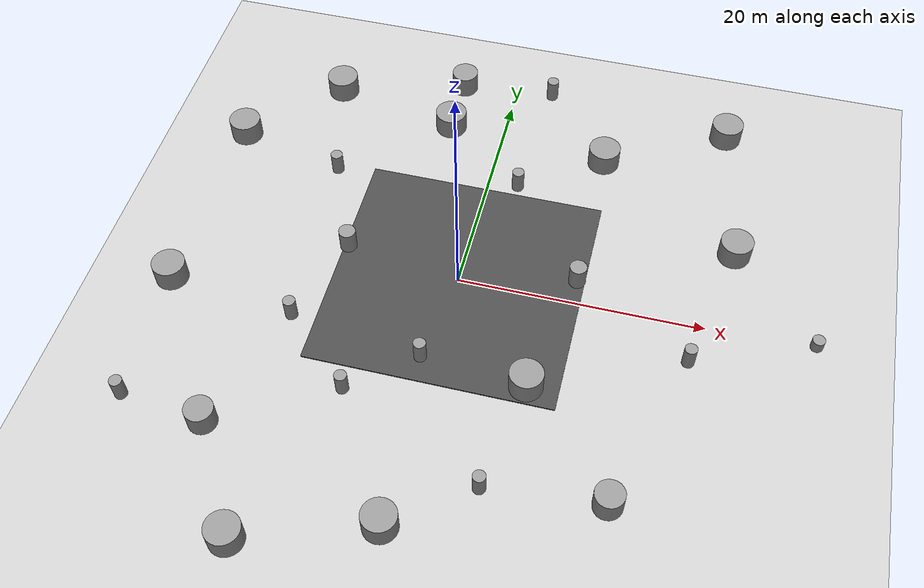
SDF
<sdf version="1.6">
 <world name="default">
  <model name="ground_plane">
   <static>1</static>
   <link name="link">
    <collision name="collision">
     <geometry><plane><normal>0 0 1</normal><size>100 100</size></plane></geometry>
     <surface><friction><ode><mu>100</mu><mu2>50</mu2></ode></friction></surface>
    </collision>
    <visual name="visual">
     <cast_shadows>0</cast_shadows>
     <geometry><plane><normal>0 0 1</normal><size>100 100</size></plane></geometry>
     <material>
      <script><uri>file://media/materials/scripts/gazebo.material</uri><name>Gazebo/Grey</name></script>
     </material>
    </visual>
   </link>
  </model>
  <model name="asphalt_plane">
   <static>1</static>
   <link name="link">
    <collision name="collision"><geometry><box><size>20 20 0.1</size></box></geometry></collision>
    <visual name="visual">
     <cast_shadows>0</cast_shadows>
     <geometry><box><size>20 20 0.1</size></box></geometry>
     <material>
      <script>
       <uri>model://asphalt_plane/materials/scripts</uri>
       <uri>model://asphalt_plane/materials/textures</uri>
       <name>vrc/asphalt</name>
      </script>
     </material>
    </visual>
   </link>
  </model>
  <model name="Landmarks">
   <link name="link_2">
    <pose>9.3573 2.17451 0 0 -0 0</pose>
    <inertial>
     <mass>3.75733</mass>
     <inertia><ixx>1.63964</ixx><ixy>0</ixy><ixz>0</ixz><iyy>1.63964</iyy><iyz>0</iyz><izz>0.906592</izz></inertia>
    </inertial>
    <visual name="visual">
     <geometry><cylinder><radius>0.694668</radius><length>1.94651</length></cylinder></geometry>
     <material>
      <lighting>1</lighting>
      <script><uri>file://media/materials/scripts/gazebo.material</uri><name>Gazebo/Grey</name></script>
      <ambient>0.3 0.3 0.3 1</ambient>
      <diffuse>0.7 0.7 0.7 1</diffuse>
      <specular>0.01 0.01 0.01 1</specular>
      <emissive>0 0 0 1</emissive>
     </material>
    </visual>
    <collision name="collision">
     <geometry><cylinder><radius>0.694668</radius><length>1.94651</length></cylinder></geometry>
     <surface>
      <friction>
       <ode><mu>1</mu><mu2>1</mu2><fdir1>0 0 0</fdir1><slip1>0</slip1><slip2>0</slip2></ode>
       <torsional>
        <coefficient>1</coefficient>
        <patch_radius>0</patch_radius>
        <surface_radius>0</surface_radius>
        <use_patch_radius>1</use_patch_radius>
        <ode><slip>0</slip></ode>
       </torsional>
      </friction>
      <bounce><restitution_coefficient>0</restitution_coefficient><threshold>1e+06</threshold></bounce>
      <contact>
       <collide_without_contact>0</collide_without_contact>
       <collide_without_contact_bitmask>1</collide_without_contact_bitmask>
       <collide_bitmask>1</collide_bitmask>
       <ode>
        <soft_cfm>0</soft_cfm>
        <soft_erp>0.2</soft_erp>
        <kp>1e+13</kp>
        <kd>1</kd>
        <max_vel>0.01</max_vel>
        <min_depth>0</min_depth>
       </ode>
       <bullet>
        <split_impulse>1</split_impulse>
        <split_impulse_penetration_threshold>-0.01</split_impulse_penetration_threshold>
        <soft_cfm>0</soft_cfm>
        <soft_erp>0.2</soft_erp>
        <kp>1e+13</kp>
        <kd>1</kd>
       </bullet>
      </contact>
     </surface>
    </collision>
   </link>
   <link name="link_2_clone">
    <pose>15.2168 -16.6499 0 0 -0 0</pose>
    <inertial>
     <mass>9.97983</mass>
     <inertia><ixx>6.34895</ixx><ixy>0</ixy><ixz>0</ixz><iyy>6.34895</iyy><iyz>0</iyz><izz>6.39585</izz></inertia>
    </inertial>
    <visual name="visual">
     <geometry><cylinder><radius>1.13215</radius><length>1.94651</length></cylinder></geometry>
     <material>
      <lighting>1</lighting>
      <script><uri>file://media/materials/scripts/gazebo.material</uri><name>Gazebo/Grey</name></script>
      <ambient>0.3 0.3 0.3 1</ambient>
      <diffuse>0.7 0.7 0.7 1</diffuse>
      <specular>0.01 0.01 0.01 1</specular>
      <emissive>0 0 0 1</emissive>
      <shader type="pixel"/>
     </material>
    </visual>
    <collision name="collision">
     <geometry><cylinder><radius>1.13215</radius><length>1.94651</length></cylinder></geometry>
     <surface>
      <friction>
       <ode><mu>1</mu><mu2>1</mu2><fdir1>0 0 0</fdir1><slip1>0</slip1><slip2>0</slip2></ode>
       <torsional>
        <coefficient>1</coefficient>
        <patch_radius>0</patch_radius>
        <surface_radius>0</surface_radius>
        <use_patch_radius>1</use_patch_radius>
        <ode><slip>0</slip></ode>
       </torsional>
      </friction>
      <bounce><restitution_coefficient>0</restitution_coefficient><threshold>1e+06</threshold></bounce>
      <contact>
       <collide_without_contact>0</collide_without_contact>
       <collide_without_contact_bitmask>1</collide_without_contact_bitmask>
       <collide_bitmask>1</collide_bitmask>
       <ode>
        <soft_cfm>0</soft_cfm>
        <soft_erp>0.2</soft_erp>
        <kp>1e+13</kp>
        <kd>1</kd>
        <max_vel>0.01</max_vel>
        <min_depth>0</min_depth>
       </ode>
       <bullet>
        <split_impulse>1</split_impulse>
        <split_impulse_penetration_threshold>-0.01</split_impulse_penetration_threshold>
        <soft_cfm>0</soft_cfm>
        <soft_erp>0.2</soft_erp>
        <kp>1e+13</kp>
        <kd>1</kd>
       </bullet>
      </contact>
     </surface>
    </collision>
   </link>
   <link name="link_2_clone_0">
    <pose>-0.966073 -7.86895 0 0 -0 0</pose>
    <inertial>
     <mass>1.94651</mass>
     <inertia>
      <ixx>0.736246</ixx>
      <ixy>0</ixy>
      <ixz>0</ixz>
      <iyy>0.736246</iyy>
      <iyz>0</iyz>
      <izz>0.243313</izz>
     </inertia>
    </inertial>
    <visual name="visual">
     <geometry><cylinder><radius>0.5</radius><length>1.94651</length></cylinder></geometry>
     <material>
      <lighting>1</lighting>
      <script><uri>file://media/materials/scripts/gazebo.material</uri><name>Gazebo/Grey</name></script>
      <ambient>0.3 0.3 0.3 1</ambient>
      <diffuse>0.7 0.7 0.7 1</diffuse>
      <specular>0.01 0.01 0.01 1</specular>
      <emissive>0 0 0 1</emissive>
      <shader type="pixel"/>
     </material>
    </visual>
    <collision name="collision">
     <geometry><cylinder><radius>0.5</radius><length>1.94651</length></cylinder></geometry>
     <surface>
      <friction>
       <ode><mu>1</mu><mu2>1</mu2><fdir1>0 0 0</fdir1><slip1>0</slip1><slip2>0</slip2></ode>
       <torsional>
        <coefficient>1</coefficient>
        <patch_radius>0</patch_radius>
        <surface_radius>0</surface_radius>
        <use_patch_radius>1</use_patch_radius>
        <ode><slip>0</slip></ode>
       </torsional>
      </friction>
      <bounce><restitution_coefficient>0</restitution_coefficient><threshold>1e+06</threshold></bounce>
      <contact>
       <collide_without_contact>0</collide_without_contact>
       <collide_without_contact_bitmask>1</collide_without_contact_bitmask>
       <collide_bitmask>1</collide_bitmask>
       <ode>
        <soft_cfm>0</soft_cfm>
        <soft_erp>0.2</soft_erp>
        <kp>1e+13</kp>
        <kd>1</kd>
        <max_vel>0.01</max_vel>
        <min_depth>0</min_depth>
       </ode>
       <bullet>
        <split_impulse>1</split_impulse>
        <split_impulse_penetration_threshold>-0.01</split_impulse_penetration_threshold>
        <soft_cfm>0</soft_cfm>
        <soft_erp>0.2</soft_erp>
        <kp>1e+13</kp>
        <kd>1</kd>
       </bullet>
      </contact>
     </surface>
    </collision>
   </link>
   <link name="link_2_clone_0_clone">
    <pose>19.0854 -3.36368 0 0 -0 0</pose>
    <inertial>
     <mass>1.94651</mass>
     <inertia>
      <ixx>0.736246</ixx>
      <ixy>0</ixy>
      <ixz>0</ixz>
      <iyy>0.736246</iyy>
      <iyz>0</iyz>
      <izz>0.243313</izz>
     </inertia>
    </inertial>
    <visual name="visual">
     <geometry><cylinder><radius>0.5</radius><length>1.94651</length></cylinder></geometry>
     <material>
      <lighting>1</lighting>
      <script><uri>file://media/materials/scripts/gazebo.material</uri><name>Gazebo/Grey</name></script>
      <ambient>0.3 0.3 0.3 1</ambient>
      <diffuse>0.7 0.7 0.7 1</diffuse>
      <specular>0.01 0.01 0.01 1</specular>
      <emissive>0 0 0 1</emissive>
      <shader type="pixel"/>
     </material>
    </visual>
    <collision name="collision">
     <geometry><cylinder><radius>0.5</radius><length>1.94651</length></cylinder></geometry>
     <surface>
      <friction>
       <ode><mu>1</mu><mu2>1</mu2><fdir1>0 0 0</fdir1><slip1>0</slip1><slip2>0</slip2></ode>
       <torsional>
        <coefficient>1</coefficient>
        <patch_radius>0</patch_radius>
        <surface_radius>0</surface_radius>
        <use_patch_radius>1</use_patch_radius>
        <ode><slip>0</slip></ode>
       </torsional>
      </friction>
      <bounce><restitution_coefficient>0</restitution_coefficient><threshold>1e+06</threshold></bounce>
      <contact>
       <collide_without_contact>0</collide_without_contact>
       <collide_without_contact_bitmask>1</collide_without_contact_bitmask>
       <collide_bitmask>1</collide_bitmask>
       <ode>
        <soft_cfm>0</soft_cfm>
        <soft_erp>0.2</soft_erp>
        <kp>1e+13</kp>
        <kd>1</kd>
        <max_vel>0.01</max_vel>
        <min_depth>0</min_depth>
       </ode>
       <bullet>
        <split_impulse>1</split_impulse>
        <split_impulse_penetration_threshold>-0.01</split_impulse_penetration_threshold>
        <soft_cfm>0</soft_cfm>
        <soft_erp>0.2</soft_erp>
        <kp>1e+13</kp>
        <kd>1</kd>
       </bullet>
      </contact>
     </surface>
    </collision>
   </link>
   <link name="link_2_clone_0_clone_0">
    <pose>-5.89095 -12.05 0 0 -0 0</pose>
    <inertial>
     <mass>1.94651</mass>
     <inertia>
      <ixx>0.736246</ixx>
      <ixy>0</ixy>
      <ixz>0</ixz>
      <iyy>0.736246</iyy>
      <iyz>0</iyz>
      <izz>0.243313</izz>
     </inertia>
    </inertial>
    <visual name="visual">
     <geometry><cylinder><radius>0.5</radius><length>1.94651</length></cylinder></geometry>
     <material>
      <lighting>1</lighting>
      <script><uri>file://media/materials/scripts/gazebo.material</uri><name>Gazebo/Grey</name></script>
      <ambient>0.3 0.3 0.3 1</ambient>
      <diffuse>0.7 0.7 0.7 1</diffuse>
      <specular>0.01 0.01 0.01 1</specular>
      <emissive>0 0 0 1</emissive>
      <shader type="pixel"/>
     </material>
    </visual>
    <collision name="collision">
     <geometry><cylinder><radius>0.5</radius><length>1.94651</length></cylinder></geometry>
     <surface>
      <friction>
       <ode><mu>1</mu><mu2>1</mu2><fdir1>0 0 0</fdir1><slip1>0</slip1><slip2>0</slip2></ode>
       <torsional>
        <coefficient>1</coefficient>
        <patch_radius>0</patch_radius>
        <surface_radius>0</surface_radius>
        <use_patch_radius>1</use_patch_radius>
        <ode><slip>0</slip></ode>
       </torsional>
      </friction>
      <bounce><restitution_coefficient>0</restitution_coefficient><threshold>1e+06</threshold></bounce>
      <contact>
       <collide_without_contact>0</collide_without_contact>
       <collide_without_contact_bitmask>1</collide_without_contact_bitmask>
       <collide_bitmask>1</collide_bitmask>
       <ode>
        <soft_cfm>0</soft_cfm>
        <soft_erp>0.2</soft_erp>
        <kp>1e+13</kp>
        <kd>1</kd>
        <max_vel>0.01</max_vel>
        <min_depth>0</min_depth>
       </ode>
       <bullet>
        <split_impulse>1</split_impulse>
        <split_impulse_penetration_threshold>-0.01</split_impulse_penetration_threshold>
        <soft_cfm>0</soft_cfm>
        <soft_erp>0.2</soft_erp>
        <kp>1e+13</kp>
        <kd>1</kd>
       </bullet>
      </contact>
     </surface>
    </collision>
   </link>
   <link name="link_2_clone_0_clone_1">
    <pose>-13.135 9.07946 0 0 -0 0</pose>
    <inertial>
     <mass>1.94651</mass>
     <inertia>
      <ixx>0.736246</ixx>
      <ixy>0</ixy>
      <ixz>0</ixz>
      <iyy>0.736246</iyy>
      <iyz>0</iyz>
      <izz>0.243313</izz>
     </inertia>
    </inertial>
    <visual name="visual">
     <geometry><cylinder><radius>0.5</radius><length>1.94651</length></cylinder></geometry>
     <material>
      <lighting>1</lighting>
      <script><uri>file://media/materials/scripts/gazebo.material</uri><name>Gazebo/Grey</name></script>
      <ambient>0.3 0.3 0.3 1</ambient>
      <diffuse>0.7 0.7 0.7 1</diffuse>
      <specular>0.01 0.01 0.01 1</specular>
      <emissive>0 0 0 1</emissive>
      <shader type="pixel"/>
     </material>
    </visual>
    <collision name="collision">
     <geometry><cylinder><radius>0.5</radius><length>1.94651</length></cylinder></geometry>
     <surface>
      <friction>
       <ode><mu>1</mu><mu2>1</mu2><fdir1>0 0 0</fdir1><slip1>0</slip1><slip2>0</slip2></ode>
       <torsional>
        <coefficient>1</coefficient>
        <patch_radius>0</patch_radius>
        <surface_radius>0</surface_radius>
        <use_patch_radius>1</use_patch_radius>
        <ode><slip>0</slip></ode>
       </torsional>
      </friction>
      <bounce><restitution_coefficient>0</restitution_coefficient><threshold>1e+06</threshold></bounce>
      <contact>
       <collide_without_contact>0</collide_without_contact>
       <collide_without_contact_bitmask>1</collide_without_contact_bitmask>
       <collide_bitmask>1</collide_bitmask>
       <ode>
        <soft_cfm>0</soft_cfm>
        <soft_erp>0.2</soft_erp>
        <kp>1e+13</kp>
        <kd>1</kd>
        <max_vel>0.01</max_vel>
        <min_depth>0</min_depth>
       </ode>
       <bullet>
        <split_impulse>1</split_impulse>
        <split_impulse_penetration_threshold>-0.01</split_impulse_penetration_threshold>
        <soft_cfm>0</soft_cfm>
        <soft_erp>0.2</soft_erp>
        <kp>1e+13</kp>
        <kd>1</kd>
       </bullet>
      </contact>
     </surface>
    </collision>
   </link>
   <link name="link_2_clone_0_clone_1_clone">
    <pose>3.10906 22.4532 0 0 -0 0</pose>
    <inertial>
     <mass>1.94651</mass>
     <inertia>
      <ixx>0.736246</ixx>
      <ixy>0</ixy>
      <ixz>0</ixz>
      <iyy>0.736246</iyy>
      <iyz>0</iyz>
      <izz>0.243313</izz>
     </inertia>
    </inertial>
    <visual name="visual">
     <geometry><cylinder><radius>0.5</radius><length>1.94651</length></cylinder></geometry>
     <material>
      <lighting>1</lighting>
      <script><uri>file://media/materials/scripts/gazebo.material</uri><name>Gazebo/Grey</name></script>
      <ambient>0.3 0.3 0.3 1</ambient>
      <diffuse>0.7 0.7 0.7 1</diffuse>
      <specular>0.01 0.01 0.01 1</specular>
      <emissive>0 0 0 1</emissive>
      <shader type="pixel"/>
     </material>
    </visual>
    <collision name="collision">
     <geometry><cylinder><radius>0.5</radius><length>1.94651</length></cylinder></geometry>
     <surface>
      <friction>
       <ode><mu>1</mu><mu2>1</mu2><fdir1>0 0 0</fdir1><slip1>0</slip1><slip2>0</slip2></ode>
       <torsional>
        <coefficient>1</coefficient>
        <patch_radius>0</patch_radius>
        <surface_radius>0</surface_radius>
        <use_patch_radius>1</use_patch_radius>
        <ode><slip>0</slip></ode>
       </torsional>
      </friction>
      <bounce><restitution_coefficient>0</restitution_coefficient><threshold>1e+06</threshold></bounce>
      <contact>
       <collide_without_contact>0</collide_without_contact>
       <collide_without_contact_bitmask>1</collide_without_contact_bitmask>
       <collide_bitmask>1</collide_bitmask>
       <ode>
        <soft_cfm>0</soft_cfm>
        <soft_erp>0.2</soft_erp>
        <kp>1e+13</kp>
        <kd>1</kd>
        <max_vel>0.01</max_vel>
        <min_depth>0</min_depth>
       </ode>
       <bullet>
        <split_impulse>1</split_impulse>
        <split_impulse_penetration_threshold>-0.01</split_impulse_penetration_threshold>
        <soft_cfm>0</soft_cfm>
        <soft_erp>0.2</soft_erp>
        <kp>1e+13</kp>
        <kd>1</kd>
       </bullet>
      </contact>
     </surface>
    </collision>
   </link>
   <link name="link_2_clone_0_clone_1_clone_0">
    <pose>-21.8909 -16.5468 0 0 -0 0</pose>
    <inertial>
     <mass>1.94651</mass>
     <inertia>
      <ixx>0.736246</ixx>
      <ixy>0</ixy>
      <ixz>0</ixz>
      <iyy>0.736246</iyy>
      <iyz>0</iyz>
      <izz>0.243313</izz>
     </inertia>
    </inertial>
    <visual name="visual">
     <geometry><cylinder><radius>0.5</radius><length>1.94651</length></cylinder></geometry>
     <material>
      <lighting>1</lighting>
      <script><uri>file://media/materials/scripts/gazebo.material</uri><name>Gazebo/Grey</name></script>
      <ambient>0.3 0.3 0.3 1</ambient>
      <diffuse>0.7 0.7 0.7 1</diffuse>
      <specular>0.01 0.01 0.01 1</specular>
      <emissive>0 0 0 1</emissive>
      <shader type="pixel"/>
     </material>
    </visual>
    <collision name="collision">
     <geometry><cylinder><radius>0.5</radius><length>1.94651</length></cylinder></geometry>
     <surface>
      <friction>
       <ode><mu>1</mu><mu2>1</mu2><fdir1>0 0 0</fdir1><slip1>0</slip1><slip2>0</slip2></ode>
       <torsional>
        <coefficient>1</coefficient>
        <patch_radius>0</patch_radius>
        <surface_radius>0</surface_radius>
        <use_patch_radius>1</use_patch_radius>
        <ode><slip>0</slip></ode>
       </torsional>
      </friction>
      <bounce><restitution_coefficient>0</restitution_coefficient><threshold>1e+06</threshold></bounce>
      <contact>
       <collide_without_contact>0</collide_without_contact>
       <collide_without_contact_bitmask>1</collide_without_contact_bitmask>
       <collide_bitmask>1</collide_bitmask>
       <ode>
        <soft_cfm>0</soft_cfm>
        <soft_erp>0.2</soft_erp>
        <kp>1e+13</kp>
        <kd>1</kd>
        <max_vel>0.01</max_vel>
        <min_depth>0</min_depth>
       </ode>
       <bullet>
        <split_impulse>1</split_impulse>
        <split_impulse_penetration_threshold>-0.01</split_impulse_penetration_threshold>
        <soft_cfm>0</soft_cfm>
        <soft_erp>0.2</soft_erp>
        <kp>1e+13</kp>
        <kd>1</kd>
       </bullet>
      </contact>
     </surface>
    </collision>
   </link>
   <link name="link_2_clone_0_clone_1_clone_1">
    <pose>6.10905 -17.5468 0 0 -0 0</pose>
    <inertial>
     <mass>1.94651</mass>
     <inertia>
      <ixx>0.736246</ixx>
      <ixy>0</ixy>
      <ixz>0</ixz>
      <iyy>0.736246</iyy>
      <iyz>0</iyz>
      <izz>0.243313</izz>
     </inertia>
    </inertial>
    <visual name="visual">
     <geometry><cylinder><radius>0.5</radius><length>1.94651</length></cylinder></geometry>
     <material>
      <lighting>1</lighting>
      <script><uri>file://media/materials/scripts/gazebo.material</uri><name>Gazebo/Grey</name></script>
      <ambient>0.3 0.3 0.3 1</ambient>
      <diffuse>0.7 0.7 0.7 1</diffuse>
      <specular>0.01 0.01 0.01 1</specular>
      <emissive>0 0 0 1</emissive>
      <shader type="pixel"/>
     </material>
    </visual>
    <collision name="collision">
     <geometry><cylinder><radius>0.5</radius><length>1.94651</length></cylinder></geometry>
     <surface>
      <friction>
       <ode><mu>1</mu><mu2>1</mu2><fdir1>0 0 0</fdir1><slip1>0</slip1><slip2>0</slip2></ode>
       <torsional>
        <coefficient>1</coefficient>
        <patch_radius>0</patch_radius>
        <surface_radius>0</surface_radius>
        <use_patch_radius>1</use_patch_radius>
        <ode><slip>0</slip></ode>
       </torsional>
      </friction>
      <bounce><restitution_coefficient>0</restitution_coefficient><threshold>1e+06</threshold></bounce>
      <contact>
       <collide_without_contact>0</collide_without_contact>
       <collide_without_contact_bitmask>1</collide_without_contact_bitmask>
       <collide_bitmask>1</collide_bitmask>
       <ode>
        <soft_cfm>0</soft_cfm>
        <soft_erp>0.2</soft_erp>
        <kp>1e+13</kp>
        <kd>1</kd>
        <max_vel>0.01</max_vel>
        <min_depth>0</min_depth>
       </ode>
       <bullet>
        <split_impulse>1</split_impulse>
        <split_impulse_penetration_threshold>-0.01</split_impulse_penetration_threshold>
        <soft_cfm>0</soft_cfm>
        <soft_erp>0.2</soft_erp>
        <kp>1e+13</kp>
        <kd>1</kd>
       </bullet>
      </contact>
     </surface>
    </collision>
   </link>
   <link name="link_2_clone_0_clone_2">
    <pose>-11.8909 -6.54677 0 0 -0 0</pose>
    <inertial>
     <mass>1.94651</mass>
     <inertia>
      <ixx>0.736246</ixx>
      <ixy>0</ixy>
      <ixz>0</ixz>
      <iyy>0.736246</iyy>
      <iyz>0</iyz>
      <izz>0.243313</izz>
     </inertia>
    </inertial>
    <visual name="visual">
     <geometry><cylinder><radius>0.5</radius><length>1.94651</length></cylinder></geometry>
     <material>
      <lighting>1</lighting>
      <script><uri>file://media/materials/scripts/gazebo.material</uri><name>Gazebo/Grey</name></script>
      <ambient>0.3 0.3 0.3 1</ambient>
      <diffuse>0.7 0.7 0.7 1</diffuse>
      <specular>0.01 0.01 0.01 1</specular>
      <emissive>0 0 0 1</emissive>
      <shader type="pixel"/>
     </material>
    </visual>
    <collision name="collision">
     <geometry><cylinder><radius>0.5</radius><length>1.94651</length></cylinder></geometry>
     <surface>
      <friction>
       <ode><mu>1</mu><mu2>1</mu2><fdir1>0 0 0</fdir1><slip1>0</slip1><slip2>0</slip2></ode>
       <torsional>
        <coefficient>1</coefficient>
        <patch_radius>0</patch_radius>
        <surface_radius>0</surface_radius>
        <use_patch_radius>1</use_patch_radius>
        <ode><slip>0</slip></ode>
       </torsional>
      </friction>
      <bounce><restitution_coefficient>0</restitution_coefficient><threshold>1e+06</threshold></bounce>
      <contact>
       <collide_without_contact>0</collide_without_contact>
       <collide_without_contact_bitmask>1</collide_without_contact_bitmask>
       <collide_bitmask>1</collide_bitmask>
       <ode>
        <soft_cfm>0</soft_cfm>
        <soft_erp>0.2</soft_erp>
        <kp>1e+13</kp>
        <kd>1</kd>
        <max_vel>0.01</max_vel>
        <min_depth>0</min_depth>
       </ode>
       <bullet>
        <split_impulse>1</split_impulse>
        <split_impulse_penetration_threshold>-0.01</split_impulse_penetration_threshold>
        <soft_cfm>0</soft_cfm>
        <soft_erp>0.2</soft_erp>
        <kp>1e+13</kp>
        <kd>1</kd>
       </bullet>
      </contact>
     </surface>
    </collision>
   </link>
   <link name="link_2_clone_0_clone_3">
    <pose>2.47459 10.8905 0 0 -0 0</pose>
    <inertial>
     <mass>1.94651</mass>
     <inertia>
      <ixx>0.736246</ixx>
      <ixy>0</ixy>
      <ixz>0</ixz>
      <iyy>0.736246</iyy>
      <iyz>0</iyz>
      <izz>0.243313</izz>
     </inertia>
    </inertial>
    <visual name="visual">
     <geometry><cylinder><radius>0.5</radius><length>1.94651</length></cylinder></geometry>
     <material>
      <lighting>1</lighting>
      <script><uri>file://media/materials/scripts/gazebo.material</uri><name>Gazebo/Grey</name></script>
      <ambient>0.3 0.3 0.3 1</ambient>
      <diffuse>0.7 0.7 0.7 1</diffuse>
      <specular>0.01 0.01 0.01 1</specular>
      <emissive>0 0 0 1</emissive>
      <shader type="pixel"/>
     </material>
    </visual>
    <collision name="collision">
     <geometry><cylinder><radius>0.5</radius><length>1.94651</length></cylinder></geometry>
     <surface>
      <friction>
       <ode><mu>1</mu><mu2>1</mu2><fdir1>0 0 0</fdir1><slip1>0</slip1><slip2>0</slip2></ode>
       <torsional>
        <coefficient>1</coefficient>
        <patch_radius>0</patch_radius>
        <surface_radius>0</surface_radius>
        <use_patch_radius>1</use_patch_radius>
        <ode><slip>0</slip></ode>
       </torsional>
      </friction>
      <bounce><restitution_coefficient>0</restitution_coefficient><threshold>1e+06</threshold></bounce>
      <contact>
       <collide_without_contact>0</collide_without_contact>
       <collide_without_contact_bitmask>1</collide_without_contact_bitmask>
       <collide_bitmask>1</collide_bitmask>
       <ode>
        <soft_cfm>0</soft_cfm>
        <soft_erp>0.2</soft_erp>
        <kp>1e+13</kp>
        <kd>1</kd>
        <max_vel>0.01</max_vel>
        <min_depth>0</min_depth>
       </ode>
       <bullet>
        <split_impulse>1</split_impulse>
        <split_impulse_penetration_threshold>-0.01</split_impulse_penetration_threshold>
        <soft_cfm>0</soft_cfm>
        <soft_erp>0.2</soft_erp>
        <kp>1e+13</kp>
        <kd>1</kd>
       </bullet>
      </contact>
     </surface>
    </collision>
   </link>
   <link name="link_2_clone_1">
    <pose>7.49676 -8.50112 0 0 -0 0</pose>
    <inertial>
     <mass>13.9411</mass>
     <inertia><ixx>10.6422</ixx><ixy>0</ixy><ixz>0</ixz><iyy>10.6422</iyy><iyz>0</iyz><izz>12.481</izz></inertia>
    </inertial>
    <visual name="visual">
     <geometry><cylinder><radius>1.33811</radius><length>1.94651</length></cylinder></geometry>
     <material>
      <lighting>1</lighting>
      <script><uri>file://media/materials/scripts/gazebo.material</uri><name>Gazebo/Grey</name></script>
      <ambient>0.3 0.3 0.3 1</ambient>
      <diffuse>0.7 0.7 0.7 1</diffuse>
      <specular>0.01 0.01 0.01 1</specular>
      <emissive>0 0 0 1</emissive>
      <shader type="pixel"/>
     </material>
    </visual>
    <collision name="collision">
     <geometry><cylinder><radius>1.33811</radius><length>1.94651</length></cylinder></geometry>
     <surface>
      <friction>
       <ode><mu>1</mu><mu2>1</mu2><fdir1>0 0 0</fdir1><slip1>0</slip1><slip2>0</slip2></ode>
       <torsional>
        <coefficient>1</coefficient>
        <patch_radius>0</patch_radius>
        <surface_radius>0</surface_radius>
        <use_patch_radius>1</use_patch_radius>
        <ode><slip>0</slip></ode>
       </torsional>
      </friction>
      <bounce><restitution_coefficient>0</restitution_coefficient><threshold>1e+06</threshold></bounce>
      <contact>
       <collide_without_contact>0</collide_without_contact>
       <collide_without_contact_bitmask>1</collide_without_contact_bitmask>
       <collide_bitmask>1</collide_bitmask>
       <ode>
        <soft_cfm>0</soft_cfm>
        <soft_erp>0.2</soft_erp>
        <kp>1e+13</kp>
        <kd>1</kd>
        <max_vel>0.01</max_vel>
        <min_depth>0</min_depth>
       </ode>
       <bullet>
        <split_impulse>1</split_impulse>
        <split_impulse_penetration_threshold>-0.01</split_impulse_penetration_threshold>
        <soft_cfm>0</soft_cfm>
        <soft_erp>0.2</soft_erp>
        <kp>1e+13</kp>
        <kd>1</kd>
       </bullet>
      </contact>
     </surface>
    </collision>
   </link>
   <link name="link_2_clone_1_clone">
    <pose>0.151473 -22.0614 0 0 -0 0</pose>
    <inertial>
     <mass>13.9411</mass>
     <inertia><ixx>10.6422</ixx><ixy>0</ixy><ixz>0</ixz><iyy>10.6422</iyy><iyz>0</iyz><izz>12.481</izz></inertia>
    </inertial>
    <visual name="visual">
     <geometry><cylinder><radius>1.33811</radius><length>1.94651</length></cylinder></geometry>
     <material>
      <lighting>1</lighting>
      <script><uri>file://media/materials/scripts/gazebo.material</uri><name>Gazebo/Grey</name></script>
      <ambient>0.3 0.3 0.3 1</ambient>
      <diffuse>0.7 0.7 0.7 1</diffuse>
      <specular>0.01 0.01 0.01 1</specular>
      <emissive>0 0 0 1</emissive>
      <shader type="pixel"/>
     </material>
    </visual>
    <collision name="collision">
     <geometry><cylinder><radius>1.33811</radius><length>1.94651</length></cylinder></geometry>
     <surface>
      <friction>
       <ode><mu>1</mu><mu2>1</mu2><fdir1>0 0 0</fdir1><slip1>0</slip1><slip2>0</slip2></ode>
       <torsional>
        <coefficient>1</coefficient>
        <patch_radius>0</patch_radius>
        <surface_radius>0</surface_radius>
        <use_patch_radius>1</use_patch_radius>
        <ode><slip>0</slip></ode>
       </torsional>
      </friction>
      <bounce><restitution_coefficient>0</restitution_coefficient><threshold>1e+06</threshold></bounce>
      <contact>
       <collide_without_contact>0</collide_without_contact>
       <collide_without_contact_bitmask>1</collide_without_contact_bitmask>
       <collide_bitmask>1</collide_bitmask>
       <ode>
        <soft_cfm>0</soft_cfm>
        <soft_erp>0.2</soft_erp>
        <kp>1e+13</kp>
        <kd>1</kd>
        <max_vel>0.01</max_vel>
        <min_depth>0</min_depth>
       </ode>
       <bullet>
        <split_impulse>1</split_impulse>
        <split_impulse_penetration_threshold>-0.01</split_impulse_penetration_threshold>
        <soft_cfm>0</soft_cfm>
        <soft_erp>0.2</soft_erp>
        <kp>1e+13</kp>
        <kd>1</kd>
       </bullet>
      </contact>
     </surface>
    </collision>
   </link>
   <link name="link_2_clone_1_clone_0">
    <pose>-22.5161 -5.35534 0 0 -0 0</pose>
    <inertial>
     <mass>13.9411</mass>
     <inertia><ixx>10.6422</ixx><ixy>0</ixy><ixz>0</ixz><iyy>10.6422</iyy><iyz>0</iyz><izz>12.481</izz></inertia>
    </inertial>
    <visual name="visual">
     <geometry><cylinder><radius>1.33811</radius><length>1.94651</length></cylinder></geometry>
     <material>
      <lighting>1</lighting>
      <script><uri>file://media/materials/scripts/gazebo.material</uri><name>Gazebo/Grey</name></script>
      <ambient>0.3 0.3 0.3 1</ambient>
      <diffuse>0.7 0.7 0.7 1</diffuse>
      <specular>0.01 0.01 0.01 1</specular>
      <emissive>0 0 0 1</emissive>
      <shader type="pixel"/>
     </material>
    </visual>
    <collision name="collision">
     <geometry><cylinder><radius>1.33811</radius><length>1.94651</length></cylinder></geometry>
     <surface>
      <friction>
       <ode><mu>1</mu><mu2>1</mu2><fdir1>0 0 0</fdir1><slip1>0</slip1><slip2>0</slip2></ode>
       <torsional>
        <coefficient>1</coefficient>
        <patch_radius>0</patch_radius>
        <surface_radius>0</surface_radius>
        <use_patch_radius>1</use_patch_radius>
        <ode><slip>0</slip></ode>
       </torsional>
      </friction>
      <bounce><restitution_coefficient>0</restitution_coefficient><threshold>1e+06</threshold></bounce>
      <contact>
       <collide_without_contact>0</collide_without_contact>
       <collide_without_contact_bitmask>1</collide_without_contact_bitmask>
       <collide_bitmask>1</collide_bitmask>
       <ode>
        <soft_cfm>0</soft_cfm>
        <soft_erp>0.2</soft_erp>
        <kp>1e+13</kp>
        <kd>1</kd>
        <max_vel>0.01</max_vel>
        <min_depth>0</min_depth>
       </ode>
       <bullet>
        <split_impulse>1</split_impulse>
        <split_impulse_penetration_threshold>-0.01</split_impulse_penetration_threshold>
        <soft_cfm>0</soft_cfm>
        <soft_erp>0.2</soft_erp>
        <kp>1e+13</kp>
        <kd>1</kd>
       </bullet>
      </contact>
     </surface>
    </collision>
   </link>
   <link name="link_2_clone_1_clone_1">
    <pose>-15.6488 18.494 0 0 -0 0</pose>
    <inertial>
     <mass>13.9411</mass>
     <inertia><ixx>10.6422</ixx><ixy>0</ixy><ixz>0</ixz><iyy>10.6422</iyy><iyz>0</iyz><izz>12.481</izz></inertia>
    </inertial>
    <visual name="visual">
     <geometry><cylinder><radius>1.33811</radius><length>1.94651</length></cylinder></geometry>
     <material>
      <lighting>1</lighting>
      <script><uri>file://media/materials/scripts/gazebo.material</uri><name>Gazebo/Grey</name></script>
      <ambient>0.3 0.3 0.3 1</ambient>
      <diffuse>0.7 0.7 0.7 1</diffuse>
      <specular>0.01 0.01 0.01 1</specular>
      <emissive>0 0 0 1</emissive>
      <shader type="pixel"/>
     </material>
    </visual>
    <collision name="collision">
     <geometry><cylinder><radius>1.33811</radius><length>1.94651</length></cylinder></geometry>
     <surface>
      <friction>
       <ode><mu>1</mu><mu2>1</mu2><fdir1>0 0 0</fdir1><slip1>0</slip1><slip2>0</slip2></ode>
       <torsional>
        <coefficient>1</coefficient>
        <patch_radius>0</patch_radius>
        <surface_radius>0</surface_radius>
        <use_patch_radius>1</use_patch_radius>
        <ode><slip>0</slip></ode>
       </torsional>
      </friction>
      <bounce><restitution_coefficient>0</restitution_coefficient><threshold>1e+06</threshold></bounce>
      <contact>
       <collide_without_contact>0</collide_without_contact>
       <collide_without_contact_bitmask>1</collide_without_contact_bitmask>
       <collide_bitmask>1</collide_bitmask>
       <ode>
        <soft_cfm>0</soft_cfm>
        <soft_erp>0.2</soft_erp>
        <kp>1e+13</kp>
        <kd>1</kd>
        <max_vel>0.01</max_vel>
        <min_depth>0</min_depth>
       </ode>
       <bullet>
        <split_impulse>1</split_impulse>
        <split_impulse_penetration_threshold>-0.01</split_impulse_penetration_threshold>
        <soft_cfm>0</soft_cfm>
        <soft_erp>0.2</soft_erp>
        <kp>1e+13</kp>
        <kd>1</kd>
       </bullet>
      </contact>
     </surface>
    </collision>
   </link>
   <link name="link_2_clone_1_clone_2">
    <pose>-4.89095 16.4532 0 0 -0 0</pose>
    <inertial>
     <mass>13.9411</mass>
     <inertia><ixx>10.6422</ixx><ixy>0</ixy><ixz>0</ixz><iyy>10.6422</iyy><iyz>0</iyz><izz>12.481</izz></inertia>
    </inertial>
    <visual name="visual">
     <geometry><cylinder><radius>1.33811</radius><length>1.94651</length></cylinder></geometry>
     <material>
      <lighting>1</lighting>
      <script><uri>file://media/materials/scripts/gazebo.material</uri><name>Gazebo/Grey</name></script>
      <ambient>0.3 0.3 0.3 1</ambient>
      <diffuse>0.7 0.7 0.7 1</diffuse>
      <specular>0.01 0.01 0.01 1</specular>
      <emissive>0 0 0 1</emissive>
      <shader type="pixel"/>
     </material>
    </visual>
    <collision name="collision">
     <geometry><cylinder><radius>1.33811</radius><length>1.94651</length></cylinder></geometry>
     <surface>
      <friction>
       <ode><mu>1</mu><mu2>1</mu2><fdir1>0 0 0</fdir1><slip1>0</slip1><slip2>0</slip2></ode>
       <torsional>
        <coefficient>1</coefficient>
        <patch_radius>0</patch_radius>
        <surface_radius>0</surface_radius>
        <use_patch_radius>1</use_patch_radius>
        <ode><slip>0</slip></ode>
       </torsional>
      </friction>
      <bounce><restitution_coefficient>0</restitution_coefficient><threshold>1e+06</threshold></bounce>
      <contact>
       <collide_without_contact>0</collide_without_contact>
       <collide_without_contact_bitmask>1</collide_without_contact_bitmask>
       <collide_bitmask>1</collide_bitmask>
       <ode>
        <soft_cfm>0</soft_cfm>
        <soft_erp>0.2</soft_erp>
        <kp>1e+13</kp>
        <kd>1</kd>
        <max_vel>0.01</max_vel>
        <min_depth>0</min_depth>
       </ode>
       <bullet>
        <split_impulse>1</split_impulse>
        <split_impulse_penetration_threshold>-0.01</split_impulse_penetration_threshold>
        <soft_cfm>0</soft_cfm>
        <soft_erp>0.2</soft_erp>
        <kp>1e+13</kp>
        <kd>1</kd>
       </bullet>
      </contact>
     </surface>
    </collision>
   </link>
   <link name="link_2_clone_1_clone_3">
    <pose>9.10905 15.4532 0 0 -0 0</pose>
    <inertial>
     <mass>13.9411</mass>
     <inertia><ixx>10.6422</ixx><ixy>0</ixy><ixz>0</ixz><iyy>10.6422</iyy><iyz>0</iyz><izz>12.481</izz></inertia>
    </inertial>
    <visual name="visual">
     <geometry><cylinder><radius>1.33811</radius><length>1.94651</length></cylinder></geometry>
     <material>
      <lighting>1</lighting>
      <script><uri>file://media/materials/scripts/gazebo.material</uri><name>Gazebo/Grey</name></script>
      <ambient>0.3 0.3 0.3 1</ambient>
      <diffuse>0.7 0.7 0.7 1</diffuse>
      <specular>0.01 0.01 0.01 1</specular>
      <emissive>0 0 0 1</emissive>
      <shader type="pixel"/>
     </material>
    </visual>
    <collision name="collision">
     <geometry><cylinder><radius>1.33811</radius><length>1.94651</length></cylinder></geometry>
     <surface>
      <friction>
       <ode><mu>1</mu><mu2>1</mu2><fdir1>0 0 0</fdir1><slip1>0</slip1><slip2>0</slip2></ode>
       <torsional>
        <coefficient>1</coefficient>
        <patch_radius>0</patch_radius>
        <surface_radius>0</surface_radius>
        <use_patch_radius>1</use_patch_radius>
        <ode><slip>0</slip></ode>
       </torsional>
      </friction>
      <bounce><restitution_coefficient>0</restitution_coefficient><threshold>1e+06</threshold></bounce>
      <contact>
       <collide_without_contact>0</collide_without_contact>
       <collide_without_contact_bitmask>1</collide_without_contact_bitmask>
       <collide_bitmask>1</collide_bitmask>
       <ode>
        <soft_cfm>0</soft_cfm>
        <soft_erp>0.2</soft_erp>
        <kp>1e+13</kp>
        <kd>1</kd>
        <max_vel>0.01</max_vel>
        <min_depth>0</min_depth>
       </ode>
       <bullet>
        <split_impulse>1</split_impulse>
        <split_impulse_penetration_threshold>-0.01</split_impulse_penetration_threshold>
        <soft_cfm>0</soft_cfm>
        <soft_erp>0.2</soft_erp>
        <kp>1e+13</kp>
        <kd>1</kd>
       </bullet>
      </contact>
     </surface>
    </collision>
   </link>
   <link name="link_2_clone_1_clone_4">
    <pose>-22.336 11.1549 0 0 -0 0</pose>
    <inertial>
     <mass>13.9411</mass>
     <inertia><ixx>10.6422</ixx><ixy>0</ixy><ixz>0</ixz><iyy>10.6422</iyy><iyz>0</iyz><izz>12.481</izz></inertia>
    </inertial>
    <visual name="visual">
     <geometry><cylinder><radius>1.33811</radius><length>1.94651</length></cylinder></geometry>
     <material>
      <lighting>1</lighting>
      <script><uri>file://media/materials/scripts/gazebo.material</uri><name>Gazebo/Grey</name></script>
      <ambient>0.3 0.3 0.3 1</ambient>
      <diffuse>0.7 0.7 0.7 1</diffuse>
      <specular>0.01 0.01 0.01 1</specular>
      <emissive>0 0 0 1</emissive>
      <shader type="pixel"/>
     </material>
    </visual>
    <collision name="collision">
     <geometry><cylinder><radius>1.33811</radius><length>1.94651</length></cylinder></geometry>
     <surface>
      <friction>
       <ode><mu>1</mu><mu2>1</mu2><fdir1>0 0 0</fdir1><slip1>0</slip1><slip2>0</slip2></ode>
       <torsional>
        <coefficient>1</coefficient>
        <patch_radius>0</patch_radius>
        <surface_radius>0</surface_radius>
        <use_patch_radius>1</use_patch_radius>
        <ode><slip>0</slip></ode>
       </torsional>
      </friction>
      <bounce><restitution_coefficient>0</restitution_coefficient><threshold>1e+06</threshold></bounce>
      <contact>
       <collide_without_contact>0</collide_without_contact>
       <collide_without_contact_bitmask>1</collide_without_contact_bitmask>
       <collide_bitmask>1</collide_bitmask>
       <ode>
        <soft_cfm>0</soft_cfm>
        <soft_erp>0.2</soft_erp>
        <kp>1e+13</kp>
        <kd>1</kd>
        <max_vel>0.01</max_vel>
        <min_depth>0</min_depth>
       </ode>
       <bullet>
        <split_impulse>1</split_impulse>
        <split_impulse_penetration_threshold>-0.01</split_impulse_penetration_threshold>
        <soft_cfm>0</soft_cfm>
        <soft_erp>0.2</soft_erp>
        <kp>1e+13</kp>
        <kd>1</kd>
       </bullet>
      </contact>
     </surface>
    </collision>
   </link>
   <link name="link_2_clone_1_clone_5">
    <pose>-9.89095 -25.5468 0 0 -0 0</pose>
    <inertial>
     <mass>13.9411</mass>
     <inertia><ixx>10.6422</ixx><ixy>0</ixy><ixz>0</ixz><iyy>10.6422</iyy><iyz>0</iyz><izz>12.481</izz></inertia>
    </inertial>
    <visual name="visual">
     <geometry><cylinder><radius>1.33811</radius><length>1.94651</length></cylinder></geometry>
     <material>
      <lighting>1</lighting>
      <script><uri>file://media/materials/scripts/gazebo.material</uri><name>Gazebo/Grey</name></script>
      <ambient>0.3 0.3 0.3 1</ambient>
      <diffuse>0.7 0.7 0.7 1</diffuse>
      <specular>0.01 0.01 0.01 1</specular>
      <emissive>0 0 0 1</emissive>
      <shader type="pixel"/>
     </material>
    </visual>
    <collision name="collision">
     <geometry><cylinder><radius>1.33811</radius><length>1.94651</length></cylinder></geometry>
     <surface>
      <friction>
       <ode><mu>1</mu><mu2>1</mu2><fdir1>0 0 0</fdir1><slip1>0</slip1><slip2>0</slip2></ode>
       <torsional>
        <coefficient>1</coefficient>
        <patch_radius>0</patch_radius>
        <surface_radius>0</surface_radius>
        <use_patch_radius>1</use_patch_radius>
        <ode><slip>0</slip></ode>
       </torsional>
      </friction>
      <bounce><restitution_coefficient>0</restitution_coefficient><threshold>1e+06</threshold></bounce>
      <contact>
       <collide_without_contact>0</collide_without_contact>
       <collide_without_contact_bitmask>1</collide_without_contact_bitmask>
       <collide_bitmask>1</collide_bitmask>
       <ode>
        <soft_cfm>0</soft_cfm>
        <soft_erp>0.2</soft_erp>
        <kp>1e+13</kp>
        <kd>1</kd>
        <max_vel>0.01</max_vel>
        <min_depth>0</min_depth>
       </ode>
       <bullet>
        <split_impulse>1</split_impulse>
        <split_impulse_penetration_threshold>-0.01</split_impulse_penetration_threshold>
        <soft_cfm>0</soft_cfm>
        <soft_erp>0.2</soft_erp>
        <kp>1e+13</kp>
        <kd>1</kd>
       </bullet>
      </contact>
     </surface>
    </collision>
   </link>
   <link name="link_2_clone_1_clone_6">
    <pose>19.1091 20.9217 0 0 -0 0</pose>
    <inertial>
     <mass>13.9411</mass>
     <inertia><ixx>10.6422</ixx><ixy>0</ixy><ixz>0</ixz><iyy>10.6422</iyy><iyz>0</iyz><izz>12.481</izz></inertia>
    </inertial>
    <visual name="visual">
     <geometry><cylinder><radius>1.33811</radius><length>1.94651</length></cylinder></geometry>
     <material>
      <lighting>1</lighting>
      <script><uri>file://media/materials/scripts/gazebo.material</uri><name>Gazebo/Grey</name></script>
      <ambient>0.3 0.3 0.3 1</ambient>
      <diffuse>0.7 0.7 0.7 1</diffuse>
      <specular>0.01 0.01 0.01 1</specular>
      <emissive>0 0 0 1</emissive>
      <shader type="pixel"/>
     </material>
    </visual>
    <collision name="collision">
     <geometry><cylinder><radius>1.33811</radius><length>1.94651</length></cylinder></geometry>
     <surface>
      <friction>
       <ode><mu>1</mu><mu2>1</mu2><fdir1>0 0 0</fdir1><slip1>0</slip1><slip2>0</slip2></ode>
       <torsional>
        <coefficient>1</coefficient>
        <patch_radius>0</patch_radius>
        <surface_radius>0</surface_radius>
        <use_patch_radius>1</use_patch_radius>
        <ode><slip>0</slip></ode>
       </torsional>
      </friction>
      <bounce><restitution_coefficient>0</restitution_coefficient><threshold>1e+06</threshold></bounce>
      <contact>
       <collide_without_contact>0</collide_without_contact>
       <collide_without_contact_bitmask>1</collide_without_contact_bitmask>
       <collide_bitmask>1</collide_bitmask>
       <ode>
        <soft_cfm>0</soft_cfm>
        <soft_erp>0.2</soft_erp>
        <kp>1e+13</kp>
        <kd>1</kd>
        <max_vel>0.01</max_vel>
        <min_depth>0</min_depth>
       </ode>
       <bullet>
        <split_impulse>1</split_impulse>
        <split_impulse_penetration_threshold>-0.01</split_impulse_penetration_threshold>
        <soft_cfm>0</soft_cfm>
        <soft_erp>0.2</soft_erp>
        <kp>1e+13</kp>
        <kd>1</kd>
       </bullet>
      </contact>
     </surface>
    </collision>
   </link>
   <link name="link_2_clone_1_clone_7">
    <pose>21.3408 7.90057 0 0 -0 0</pose>
    <inertial>
     <mass>13.9411</mass>
     <inertia><ixx>10.6422</ixx><ixy>0</ixy><ixz>0</ixz><iyy>10.6422</iyy><iyz>0</iyz><izz>12.481</izz></inertia>
    </inertial>
    <visual name="visual">
     <geometry><cylinder><radius>1.33811</radius><length>1.94651</length></cylinder></geometry>
     <material>
      <lighting>1</lighting>
      <script><uri>file://media/materials/scripts/gazebo.material</uri><name>Gazebo/Grey</name></script>
      <ambient>0.3 0.3 0.3 1</ambient>
      <diffuse>0.7 0.7 0.7 1</diffuse>
      <specular>0.01 0.01 0.01 1</specular>
      <emissive>0 0 0 1</emissive>
      <shader type="pixel"/>
     </material>
    </visual>
    <collision name="collision">
     <geometry><cylinder><radius>1.33811</radius><length>1.94651</length></cylinder></geometry>
     <surface>
      <friction>
       <ode><mu>1</mu><mu2>1</mu2><fdir1>0 0 0</fdir1><slip1>0</slip1><slip2>0</slip2></ode>
       <torsional>
        <coefficient>1</coefficient>
        <patch_radius>0</patch_radius>
        <surface_radius>0</surface_radius>
        <use_patch_radius>1</use_patch_radius>
        <ode><slip>0</slip></ode>
       </torsional>
      </friction>
      <bounce><restitution_coefficient>0</restitution_coefficient><threshold>1e+06</threshold></bounce>
      <contact>
       <collide_without_contact>0</collide_without_contact>
       <collide_without_contact_bitmask>1</collide_without_contact_bitmask>
       <collide_bitmask>1</collide_bitmask>
       <ode>
        <soft_cfm>0</soft_cfm>
        <soft_erp>0.2</soft_erp>
        <kp>1e+13</kp>
        <kd>1</kd>
        <max_vel>0.01</max_vel>
        <min_depth>0</min_depth>
       </ode>
       <bullet>
        <split_impulse>1</split_impulse>
        <split_impulse_penetration_threshold>-0.01</split_impulse_penetration_threshold>
        <soft_cfm>0</soft_cfm>
        <soft_erp>0.2</soft_erp>
        <kp>1e+13</kp>
        <kd>1</kd>
       </bullet>
      </contact>
     </surface>
    </collision>
   </link>
   <link name="link_2_clone_2">
    <pose>-9.65466 1.20851 0 0 -0 0</pose>
    <inertial>
     <mass>3.75733</mass>
     <inertia><ixx>1.63964</ixx><ixy>0</ixy><ixz>0</ixz><iyy>1.63964</iyy><iyz>0</iyz><izz>0.906592</izz></inertia>
    </inertial>
    <visual name="visual">
     <geometry><cylinder><radius>0.694668</radius><length>1.94651</length></cylinder></geometry>
     <material>
      <lighting>1</lighting>
      <script><uri>file://media/materials/scripts/gazebo.material</uri><name>Gazebo/Grey</name></script>
      <ambient>0.3 0.3 0.3 1</ambient>
      <diffuse>0.7 0.7 0.7 1</diffuse>
      <specular>0.01 0.01 0.01 1</specular>
      <emissive>0 0 0 1</emissive>
      <shader type="pixel"/>
     </material>
    </visual>
    <collision name="collision">
     <geometry><cylinder><radius>0.694668</radius><length>1.94651</length></cylinder></geometry>
     <surface>
      <friction>
       <ode><mu>1</mu><mu2>1</mu2><fdir1>0 0 0</fdir1><slip1>0</slip1><slip2>0</slip2></ode>
       <torsional>
        <coefficient>1</coefficient>
        <patch_radius>0</patch_radius>
        <surface_radius>0</surface_radius>
        <use_patch_radius>1</use_patch_radius>
        <ode><slip>0</slip></ode>
       </torsional>
      </friction>
      <bounce><restitution_coefficient>0</restitution_coefficient><threshold>1e+06</threshold></bounce>
      <contact>
       <collide_without_contact>0</collide_without_contact>
       <collide_without_contact_bitmask>1</collide_without_contact_bitmask>
       <collide_bitmask>1</collide_bitmask>
       <ode>
        <soft_cfm>0</soft_cfm>
        <soft_erp>0.2</soft_erp>
        <kp>1e+13</kp>
        <kd>1</kd>
        <max_vel>0.01</max_vel>
        <min_depth>0</min_depth>
       </ode>
       <bullet>
        <split_impulse>1</split_impulse>
        <split_impulse_penetration_threshold>-0.01</split_impulse_penetration_threshold>
        <soft_cfm>0</soft_cfm>
        <soft_erp>0.2</soft_erp>
        <kp>1e+13</kp>
        <kd>1</kd>
       </bullet>
      </contact>
     </surface>
    </collision>
   </link>
   <link name="link_2_clone_clone">
    <pose>-15.0224 -17.2629 0 0 -0 0</pose>
    <inertial>
     <mass>9.97983</mass>
     <inertia><ixx>6.34895</ixx><ixy>0</ixy><ixz>0</ixz><iyy>6.34895</iyy><iyz>0</iyz><izz>6.39585</izz></inertia>
    </inertial>
    <visual name="visual">
     <geometry><cylinder><radius>1.13215</radius><length>1.94651</length></cylinder></geometry>
     <material>
      <lighting>1</lighting>
      <script><uri>file://media/materials/scripts/gazebo.material</uri><name>Gazebo/Grey</name></script>
      <ambient>0.3 0.3 0.3 1</ambient>
      <diffuse>0.7 0.7 0.7 1</diffuse>
      <specular>0.01 0.01 0.01 1</specular>
      <emissive>0 0 0 1</emissive>
      <shader type="pixel"/>
     </material>
    </visual>
    <collision name="collision">
     <geometry><cylinder><radius>1.13215</radius><length>1.94651</length></cylinder></geometry>
     <surface>
      <friction>
       <ode><mu>1</mu><mu2>1</mu2><fdir1>0 0 0</fdir1><slip1>0</slip1><slip2>0</slip2></ode>
       <torsional>
        <coefficient>1</coefficient>
        <patch_radius>0</patch_radius>
        <surface_radius>0</surface_radius>
        <use_patch_radius>1</use_patch_radius>
        <ode><slip>0</slip></ode>
       </torsional>
      </friction>
      <bounce><restitution_coefficient>0</restitution_coefficient><threshold>1e+06</threshold></bounce>
      <contact>
       <collide_without_contact>0</collide_without_contact>
       <collide_without_contact_bitmask>1</collide_without_contact_bitmask>
       <collide_bitmask>1</collide_bitmask>
       <ode>
        <soft_cfm>0</soft_cfm>
        <soft_erp>0.2</soft_erp>
        <kp>1e+13</kp>
        <kd>1</kd>
        <max_vel>0.01</max_vel>
        <min_depth>0</min_depth>
       </ode>
       <bullet>
        <split_impulse>1</split_impulse>
        <split_impulse_penetration_threshold>-0.01</split_impulse_penetration_threshold>
        <soft_cfm>0</soft_cfm>
        <soft_erp>0.2</soft_erp>
        <kp>1e+13</kp>
        <kd>1</kd>
       </bullet>
      </contact>
     </surface>
    </collision>
   </link>
   <link name="link_2_clone_clone_0">
    <pose>-4.9344 21.6632 0 0 -0 0</pose>
    <inertial>
     <mass>9.97983</mass>
     <inertia><ixx>6.34895</ixx><ixy>0</ixy><ixz>0</ixz><iyy>6.34895</iyy><iyz>0</iyz><izz>6.39585</izz></inertia>
    </inertial>
    <visual name="visual">
     <geometry><cylinder><radius>1.13215</radius><length>1.94651</length></cylinder></geometry>
     <material>
      <lighting>1</lighting>
      <script><uri>file://media/materials/scripts/gazebo.material</uri><name>Gazebo/Grey</name></script>
      <ambient>0.3 0.3 0.3 1</ambient>
      <diffuse>0.7 0.7 0.7 1</diffuse>
      <specular>0.01 0.01 0.01 1</specular>
      <emissive>0 0 0 1</emissive>
      <shader type="pixel"/>
     </material>
    </visual>
    <collision name="collision">
     <geometry><cylinder><radius>1.13215</radius><length>1.94651</length></cylinder></geometry>
     <surface>
      <friction>
       <ode><mu>1</mu><mu2>1</mu2><fdir1>0 0 0</fdir1><slip1>0</slip1><slip2>0</slip2></ode>
       <torsional>
        <coefficient>1</coefficient>
        <patch_radius>0</patch_radius>
        <surface_radius>0</surface_radius>
        <use_patch_radius>1</use_patch_radius>
        <ode><slip>0</slip></ode>
       </torsional>
      </friction>
      <bounce><restitution_coefficient>0</restitution_coefficient><threshold>1e+06</threshold></bounce>
      <contact>
       <collide_without_contact>0</collide_without_contact>
       <collide_without_contact_bitmask>1</collide_without_contact_bitmask>
       <collide_bitmask>1</collide_bitmask>
       <ode>
        <soft_cfm>0</soft_cfm>
        <soft_erp>0.2</soft_erp>
        <kp>1e+13</kp>
        <kd>1</kd>
        <max_vel>0.01</max_vel>
        <min_depth>0</min_depth>
       </ode>
       <bullet>
        <split_impulse>1</split_impulse>
        <split_impulse_penetration_threshold>-0.01</split_impulse_penetration_threshold>
        <soft_cfm>0</soft_cfm>
        <soft_erp>0.2</soft_erp>
        <kp>1e+13</kp>
        <kd>1</kd>
       </bullet>
      </contact>
     </surface>
    </collision>
   </link>
   <link name="link_3">
    <pose>28.4704 0.144636 0 0 -0 0</pose>
    <inertial>
     <mass>1</mass>
     <inertia><ixx>0.145833</ixx><ixy>0</ixy><ixz>0</ixz><iyy>0.145833</iyy><iyz>0</iyz><izz>0.125</izz></inertia>
    </inertial>
    <visual name="visual">
     <geometry><cylinder><radius>0.5</radius><length>1</length></cylinder></geometry>
     <material>
      <lighting>1</lighting>
      <script><uri>file://media/materials/scripts/gazebo.material</uri><name>Gazebo/Grey</name></script>
      <ambient>0.3 0.3 0.3 1</ambient>
      <diffuse>0.7 0.7 0.7 1</diffuse>
      <specular>0.01 0.01 0.01 1</specular>
      <emissive>0 0 0 1</emissive>
     </material>
    </visual>
    <collision name="collision">
     <geometry><cylinder><radius>0.5</radius><length>1</length></cylinder></geometry>
     <surface>
      <friction>
       <ode><mu>1</mu><mu2>1</mu2><fdir1>0 0 0</fdir1><slip1>0</slip1><slip2>0</slip2></ode>
       <torsional>
        <coefficient>1</coefficient>
        <patch_radius>0</patch_radius>
        <surface_radius>0</surface_radius>
        <use_patch_radius>1</use_patch_radius>
        <ode><slip>0</slip></ode>
       </torsional>
      </friction>
      <bounce><restitution_coefficient>0</restitution_coefficient><threshold>1e+06</threshold></bounce>
      <contact>
       <collide_without_contact>0</collide_without_contact>
       <collide_without_contact_bitmask>1</collide_without_contact_bitmask>
       <collide_bitmask>1</collide_bitmask>
       <ode>
        <soft_cfm>0</soft_cfm>
        <soft_erp>0.2</soft_erp>
        <kp>1e+13</kp>
        <kd>1</kd>
        <max_vel>0.01</max_vel>
        <min_depth>0</min_depth>
       </ode>
       <bullet>
        <split_impulse>1</split_impulse>
        <split_impulse_penetration_threshold>-0.01</split_impulse_penetration_threshold>
        <soft_cfm>0</soft_cfm>
        <soft_erp>0.2</soft_erp>
        <kp>1e+13</kp>
        <kd>1</kd>
       </bullet>
      </contact>
     </surface>
    </collision>
   </link>
   <static>0</static>
   <pose>0 0 1.02326 0 0 -0.004558</pose>
  </model>
 </world>
</sdf>
